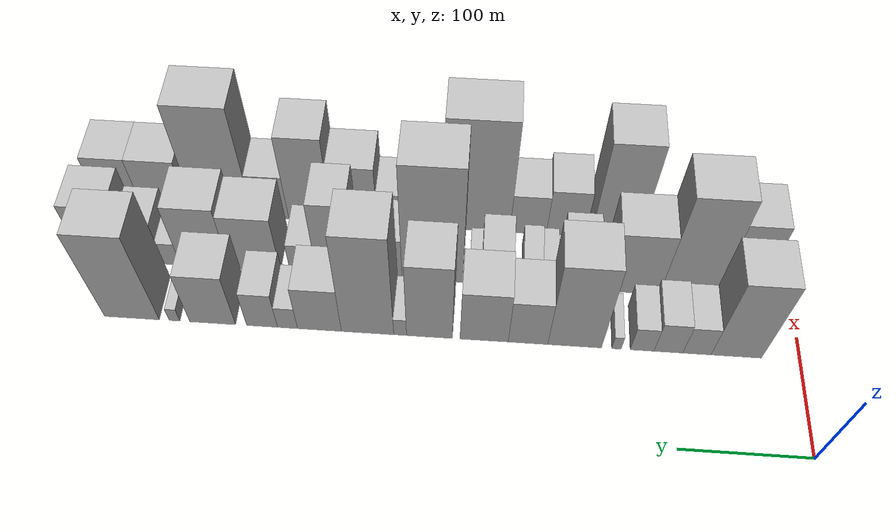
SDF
<sdf version="1.6">
 <world name="default">
  <model name="building_18">
   <static>1</static>
   <pose>100.0000 49.2545 0 0.000000 0.000000 0.000000</pose>
   <link name="link">
    <pose>0 0 52.50 0 0 0</pose>
    <collision name="collision"><geometry><box><size>40.0000 38.9705 105.0000</size></box></geometry></collision>
    <visual name="visual">
     <cast_shadows>0</cast_shadows>
     <geometry><box><size>40.0000 38.9705 105.0000</size></box></geometry>
     <material>
      <script>
       <uri>model://HANNAS_wall/materials/scripts</uri>
       <uri>model://HANNAS_wall/materials/textures</uri>
       <name>vrc/HANNAS_wall</name>
      </script>
     </material>
    </visual>
   </link>
  </model>
  <model name="building_19">
   <static>1</static>
   <pose>100.0000 79.6568 0 0.000000 0.000000 0.000000</pose>
   <link name="link">
    <pose>0 0 19.50 0 0 0</pose>
    <collision name="collision"><geometry><box><size>40.0000 21.8342 39.0000</size></box></geometry></collision>
    <visual name="visual">
     <cast_shadows>0</cast_shadows>
     <geometry><box><size>40.0000 21.8342 39.0000</size></box></geometry>
     <material>
      <script>
       <uri>model://HANNAS_wall/materials/scripts</uri>
       <uri>model://HANNAS_wall/materials/textures</uri>
       <name>vrc/HANNAS_wall</name>
      </script>
     </material>
    </visual>
   </link>
  </model>
  <model name="building_20">
   <static>1</static>
   <pose>100.0000 101.7693 0 0.000000 0.000000 0.000000</pose>
   <link name="link">
    <pose>0 0 21.00 0 0 0</pose>
    <collision name="collision"><geometry><box><size>40.0000 22.3909 42.0000</size></box></geometry></collision>
    <visual name="visual">
     <cast_shadows>0</cast_shadows>
     <geometry><box><size>40.0000 22.3909 42.0000</size></box></geometry>
     <material>
      <script>
       <uri>model://HANNAS_wall/materials/scripts</uri>
       <uri>model://HANNAS_wall/materials/textures</uri>
       <name>vrc/HANNAS_wall</name>
      </script>
     </material>
    </visual>
   </link>
  </model>
  <model name="building_21">
   <static>1</static>
   <pose>100.0000 122.1437 0 0.000000 0.000000 0.000000</pose>
   <link name="link">
    <pose>0 0 16.50 0 0 0</pose>
    <collision name="collision"><geometry><box><size>40.0000 18.3578 33.0000</size></box></geometry></collision>
    <visual name="visual">
     <cast_shadows>0</cast_shadows>
     <geometry><box><size>40.0000 18.3578 33.0000</size></box></geometry>
     <material>
      <script>
       <uri>model://HANNAS_wall/materials/scripts</uri>
       <uri>model://HANNAS_wall/materials/textures</uri>
       <name>vrc/HANNAS_wall</name>
      </script>
     </material>
    </visual>
   </link>
  </model>
  <model name="building_22">
   <static>1</static>
   <pose>100.0000 142.0112 0 0.000000 0.000000 0.000000</pose>
   <link name="link">
    <pose>0 0 9.00 0 0 0</pose>
    <collision name="collision"><geometry><box><size>40.0000 7.3772 18.0000</size></box></geometry></collision>
    <visual name="visual">
     <cast_shadows>0</cast_shadows>
     <geometry><box><size>40.0000 7.3772 18.0000</size></box></geometry>
     <material>
      <script>
       <uri>model://HANNAS_wall/materials/scripts</uri>
       <uri>model://HANNAS_wall/materials/textures</uri>
       <name>vrc/HANNAS_wall</name>
      </script>
     </material>
    </visual>
   </link>
  </model>
  <model name="building_23">
   <static>1</static>
   <pose>100.0000 174.6972 0 0.000000 0.000000 0.000000</pose>
   <link name="link">
    <pose>0 0 57.00 0 0 0</pose>
    <collision name="collision"><geometry><box><size>40.0000 41.9947 114.0000</size></box></geometry></collision>
    <visual name="visual">
     <cast_shadows>0</cast_shadows>
     <geometry><box><size>40.0000 41.9947 114.0000</size></box></geometry>
     <material>
      <script>
       <uri>model://HANNAS_wall/materials/scripts</uri>
       <uri>model://HANNAS_wall/materials/textures</uri>
       <name>vrc/HANNAS_wall</name>
      </script>
     </material>
    </visual>
   </link>
  </model>
  <model name="building_24">
   <static>1</static>
   <pose>100.0000 211.2063 0 0.000000 0.000000 0.000000</pose>
   <link name="link">
    <pose>0 0 30.00 0 0 0</pose>
    <collision name="collision"><geometry><box><size>40.0000 31.0236 60.0000</size></box></geometry></collision>
    <visual name="visual">
     <cast_shadows>0</cast_shadows>
     <geometry><box><size>40.0000 31.0236 60.0000</size></box></geometry>
     <material>
      <script>
       <uri>model://HANNAS_wall/materials/scripts</uri>
       <uri>model://HANNAS_wall/materials/textures</uri>
       <name>vrc/HANNAS_wall</name>
      </script>
     </material>
    </visual>
   </link>
  </model>
  <model name="building_25">
   <static>1</static>
   <pose>100.0000 245.6507 0 0.000000 0.000000 0.000000</pose>
   <link name="link">
    <pose>0 0 34.50 0 0 0</pose>
    <collision name="collision"><geometry><box><size>40.0000 37.8653 69.0000</size></box></geometry></collision>
    <visual name="visual">
     <cast_shadows>0</cast_shadows>
     <geometry><box><size>40.0000 37.8653 69.0000</size></box></geometry>
     <material>
      <script>
       <uri>model://HANNAS_wall/materials/scripts</uri>
       <uri>model://HANNAS_wall/materials/textures</uri>
       <name>vrc/HANNAS_wall</name>
      </script>
     </material>
    </visual>
   </link>
  </model>
  <model name="building_26">
   <static>1</static>
   <pose>100.0000 288.7055 0 0.000000 0.000000 0.000000</pose>
   <link name="link">
    <pose>0 0 51.00 0 0 0</pose>
    <collision name="collision"><geometry><box><size>40.0000 36.2443 102.0000</size></box></geometry></collision>
    <visual name="visual">
     <cast_shadows>0</cast_shadows>
     <geometry><box><size>40.0000 36.2443 102.0000</size></box></geometry>
     <material>
      <script>
       <uri>model://HANNAS_wall/materials/scripts</uri>
       <uri>model://HANNAS_wall/materials/textures</uri>
       <name>vrc/HANNAS_wall</name>
      </script>
     </material>
    </visual>
   </link>
  </model>
  <model name="building_27">
   <static>1</static>
   <pose>100.0000 311.8651 0 0.000000 0.000000 0.000000</pose>
   <link name="link">
    <pose>0 0 12.00 0 0 0</pose>
    <collision name="collision"><geometry><box><size>40.0000 10.0750 24.0000</size></box></geometry></collision>
    <visual name="visual">
     <cast_shadows>0</cast_shadows>
     <geometry><box><size>40.0000 10.0750 24.0000</size></box></geometry>
     <material>
      <script>
       <uri>model://HANNAS_wall/materials/scripts</uri>
       <uri>model://HANNAS_wall/materials/textures</uri>
       <name>vrc/HANNAS_wall</name>
      </script>
     </material>
    </visual>
   </link>
  </model>
  <model name="building_28">
   <static>1</static>
   <pose>100.0000 337.6767 0 0.000000 0.000000 0.000000</pose>
   <link name="link">
    <pose>0 0 67.50 0 0 0</pose>
    <collision name="collision"><geometry><box><size>40.0000 41.5482 135.0000</size></box></geometry></collision>
    <visual name="visual">
     <cast_shadows>0</cast_shadows>
     <geometry><box><size>40.0000 41.5482 135.0000</size></box></geometry>
     <material>
      <script>
       <uri>model://HANNAS_wall/materials/scripts</uri>
       <uri>model://HANNAS_wall/materials/textures</uri>
       <name>vrc/HANNAS_wall</name>
      </script>
     </material>
    </visual>
   </link>
  </model>
  <model name="building_29">
   <static>1</static>
   <pose>100.0000 375.9420 0 0.000000 0.000000 0.000000</pose>
   <link name="link">
    <pose>0 0 30.00 0 0 0</pose>
    <collision name="collision"><geometry><box><size>40.0000 34.9823 60.0000</size></box></geometry></collision>
    <visual name="visual">
     <cast_shadows>0</cast_shadows>
     <geometry><box><size>40.0000 34.9823 60.0000</size></box></geometry>
     <material>
      <script>
       <uri>model://HANNAS_wall/materials/scripts</uri>
       <uri>model://HANNAS_wall/materials/textures</uri>
       <name>vrc/HANNAS_wall</name>
      </script>
     </material>
    </visual>
   </link>
  </model>
  <model name="building_30">
   <static>1</static>
   <pose>100.0000 401.3811 0 0.000000 0.000000 0.000000</pose>
   <link name="link">
    <pose>0 0 15.00 0 0 0</pose>
    <collision name="collision"><geometry><box><size>40.0000 15.8960 30.0000</size></box></geometry></collision>
    <visual name="visual">
     <cast_shadows>0</cast_shadows>
     <geometry><box><size>40.0000 15.8960 30.0000</size></box></geometry>
     <material>
      <script>
       <uri>model://HANNAS_wall/materials/scripts</uri>
       <uri>model://HANNAS_wall/materials/textures</uri>
       <name>vrc/HANNAS_wall</name>
      </script>
     </material>
    </visual>
   </link>
  </model>
  <model name="building_31">
   <static>1</static>
   <pose>100.0000 421.6672 0 0.000000 0.000000 0.000000</pose>
   <link name="link">
    <pose>0 0 24.00 0 0 0</pose>
    <collision name="collision"><geometry><box><size>40.0000 24.6762 48.0000</size></box></geometry></collision>
    <visual name="visual">
     <cast_shadows>0</cast_shadows>
     <geometry><box><size>40.0000 24.6762 48.0000</size></box></geometry>
     <material>
      <script>
       <uri>model://HANNAS_wall/materials/scripts</uri>
       <uri>model://HANNAS_wall/materials/textures</uri>
       <name>vrc/HANNAS_wall</name>
      </script>
     </material>
    </visual>
   </link>
  </model>
  <model name="building_32">
   <static>1</static>
   <pose>100.0000 461.3938 0 0.000000 0.000000 0.000000</pose>
   <link name="link">
    <pose>0 0 34.50 0 0 0</pose>
    <collision name="collision"><geometry><box><size>40.0000 36.7770 69.0000</size></box></geometry></collision>
    <visual name="visual">
     <cast_shadows>0</cast_shadows>
     <geometry><box><size>40.0000 36.7770 69.0000</size></box></geometry>
     <material>
      <script>
       <uri>model://HANNAS_wall/materials/scripts</uri>
       <uri>model://HANNAS_wall/materials/textures</uri>
       <name>vrc/HANNAS_wall</name>
      </script>
     </material>
    </visual>
   </link>
  </model>
  <model name="building_33">
   <static>1</static>
   <pose>100.0000 492.0627 0 0.000000 0.000000 0.000000</pose>
   <link name="link">
    <pose>0 0 9.00 0 0 0</pose>
    <collision name="collision"><geometry><box><size>40.0000 8.5607 18.0000</size></box></geometry></collision>
    <visual name="visual">
     <cast_shadows>0</cast_shadows>
     <geometry><box><size>40.0000 8.5607 18.0000</size></box></geometry>
     <material>
      <script>
       <uri>model://HANNAS_wall/materials/scripts</uri>
       <uri>model://HANNAS_wall/materials/textures</uri>
       <name>vrc/HANNAS_wall</name>
      </script>
     </material>
    </visual>
   </link>
  </model>
  <model name="building_34">
   <static>1</static>
   <pose>100.0000 526.4093 0 0.000000 0.000000 0.000000</pose>
   <link name="link">
    <pose>0 0 58.50 0 0 0</pose>
    <collision name="collision"><geometry><box><size>40.0000 44.1324 117.0000</size></box></geometry></collision>
    <visual name="visual">
     <cast_shadows>0</cast_shadows>
     <geometry><box><size>40.0000 44.1324 117.0000</size></box></geometry>
     <material>
      <script>
       <uri>model://HANNAS_wall/materials/scripts</uri>
       <uri>model://HANNAS_wall/materials/textures</uri>
       <name>vrc/HANNAS_wall</name>
      </script>
     </material>
    </visual>
   </link>
  </model>
  <model name="building_49">
   <static>1</static>
   <pose>152.0000 45.5225 0 0.000000 0.000000 0.000000</pose>
   <link name="link">
    <pose>0 0 51.00 0 0 0</pose>
    <collision name="collision"><geometry><box><size>40.0000 31.6661 102.0000</size></box></geometry></collision>
    <visual name="visual">
     <cast_shadows>0</cast_shadows>
     <geometry><box><size>40.0000 31.6661 102.0000</size></box></geometry>
     <material>
      <script>
       <uri>model://HANNAS_wall/materials/scripts</uri>
       <uri>model://HANNAS_wall/materials/textures</uri>
       <name>vrc/HANNAS_wall</name>
      </script>
     </material>
    </visual>
   </link>
  </model>
  <model name="building_50">
   <static>1</static>
   <pose>152.0000 83.6295 0 0.000000 0.000000 0.000000</pose>
   <link name="link">
    <pose>0 0 66.00 0 0 0</pose>
    <collision name="collision"><geometry><box><size>40.0000 44.5480 132.0000</size></box></geometry></collision>
    <visual name="visual">
     <cast_shadows>0</cast_shadows>
     <geometry><box><size>40.0000 44.5480 132.0000</size></box></geometry>
     <material>
      <script>
       <uri>model://HANNAS_wall/materials/scripts</uri>
       <uri>model://HANNAS_wall/materials/textures</uri>
       <name>vrc/HANNAS_wall</name>
      </script>
     </material>
    </visual>
   </link>
  </model>
  <model name="building_51">
   <static>1</static>
   <pose>152.0000 127.2248 0 0.000000 0.000000 0.000000</pose>
   <link name="link">
    <pose>0 0 40.50 0 0 0</pose>
    <collision name="collision"><geometry><box><size>40.0000 42.6425 81.0000</size></box></geometry></collision>
    <visual name="visual">
     <cast_shadows>0</cast_shadows>
     <geometry><box><size>40.0000 42.6425 81.0000</size></box></geometry>
     <material>
      <script>
       <uri>model://HANNAS_wall/materials/scripts</uri>
       <uri>model://HANNAS_wall/materials/textures</uri>
       <name>vrc/HANNAS_wall</name>
      </script>
     </material>
    </visual>
   </link>
  </model>
  <model name="building_52">
   <static>1</static>
   <pose>152.0000 171.4712 0 0.000000 0.000000 0.000000</pose>
   <link name="link">
    <pose>0 0 25.50 0 0 0</pose>
    <collision name="collision"><geometry><box><size>40.0000 27.8504 51.0000</size></box></geometry></collision>
    <visual name="visual">
     <cast_shadows>0</cast_shadows>
     <geometry><box><size>40.0000 27.8504 51.0000</size></box></geometry>
     <material>
      <script>
       <uri>model://HANNAS_wall/materials/scripts</uri>
       <uri>model://HANNAS_wall/materials/textures</uri>
       <name>vrc/HANNAS_wall</name>
      </script>
     </material>
    </visual>
   </link>
  </model>
  <model name="building_53">
   <static>1</static>
   <pose>152.0000 195.6565 0 0.000000 0.000000 0.000000</pose>
   <link name="link">
    <pose>0 0 13.50 0 0 0</pose>
    <collision name="collision"><geometry><box><size>40.0000 12.5201 27.0000</size></box></geometry></collision>
    <visual name="visual">
     <cast_shadows>0</cast_shadows>
     <geometry><box><size>40.0000 12.5201 27.0000</size></box></geometry>
     <material>
      <script>
       <uri>model://HANNAS_wall/materials/scripts</uri>
       <uri>model://HANNAS_wall/materials/textures</uri>
       <name>vrc/HANNAS_wall</name>
      </script>
     </material>
    </visual>
   </link>
  </model>
  <model name="building_54">
   <static>1</static>
   <pose>152.0000 209.7513 0 0.000000 0.000000 0.000000</pose>
   <link name="link">
    <pose>0 0 15.00 0 0 0</pose>
    <collision name="collision"><geometry><box><size>40.0000 15.6696 30.0000</size></box></geometry></collision>
    <visual name="visual">
     <cast_shadows>0</cast_shadows>
     <geometry><box><size>40.0000 15.6696 30.0000</size></box></geometry>
     <material>
      <script>
       <uri>model://HANNAS_wall/materials/scripts</uri>
       <uri>model://HANNAS_wall/materials/textures</uri>
       <name>vrc/HANNAS_wall</name>
      </script>
     </material>
    </visual>
   </link>
  </model>
  <model name="building_55">
   <static>1</static>
   <pose>152.0000 238.0543 0 0.000000 0.000000 0.000000</pose>
   <link name="link">
    <pose>0 0 21.00 0 0 0</pose>
    <collision name="collision"><geometry><box><size>40.0000 24.9364 42.0000</size></box></geometry></collision>
    <visual name="visual">
     <cast_shadows>0</cast_shadows>
     <geometry><box><size>40.0000 24.9364 42.0000</size></box></geometry>
     <material>
      <script>
       <uri>model://HANNAS_wall/materials/scripts</uri>
       <uri>model://HANNAS_wall/materials/textures</uri>
       <name>vrc/HANNAS_wall</name>
      </script>
     </material>
    </visual>
   </link>
  </model>
  <model name="building_56">
   <static>1</static>
   <pose>152.0000 255.4384 0 0.000000 0.000000 0.000000</pose>
   <link name="link">
    <pose>0 0 10.50 0 0 0</pose>
    <collision name="collision"><geometry><box><size>40.0000 9.8317 21.0000</size></box></geometry></collision>
    <visual name="visual">
     <cast_shadows>0</cast_shadows>
     <geometry><box><size>40.0000 9.8317 21.0000</size></box></geometry>
     <material>
      <script>
       <uri>model://HANNAS_wall/materials/scripts</uri>
       <uri>model://HANNAS_wall/materials/textures</uri>
       <name>vrc/HANNAS_wall</name>
      </script>
     </material>
    </visual>
   </link>
  </model>
  <model name="building_57">
   <static>1</static>
   <pose>152.0000 290.1492 0 0.000000 0.000000 0.000000</pose>
   <link name="link">
    <pose>0 0 75.00 0 0 0</pose>
    <collision name="collision"><geometry><box><size>40.0000 49.5898 150.0000</size></box></geometry></collision>
    <visual name="visual">
     <cast_shadows>0</cast_shadows>
     <geometry><box><size>40.0000 49.5898 150.0000</size></box></geometry>
     <material>
      <script>
       <uri>model://HANNAS_wall/materials/scripts</uri>
       <uri>model://HANNAS_wall/materials/textures</uri>
       <name>vrc/HANNAS_wall</name>
      </script>
     </material>
    </visual>
   </link>
  </model>
  <model name="building_58">
   <static>1</static>
   <pose>152.0000 330.6442 0 0.000000 0.000000 0.000000</pose>
   <link name="link">
    <pose>0 0 27.00 0 0 0</pose>
    <collision name="collision"><geometry><box><size>40.0000 31.4003 54.0000</size></box></geometry></collision>
    <visual name="visual">
     <cast_shadows>0</cast_shadows>
     <geometry><box><size>40.0000 31.4003 54.0000</size></box></geometry>
     <material>
      <script>
       <uri>model://HANNAS_wall/materials/scripts</uri>
       <uri>model://HANNAS_wall/materials/textures</uri>
       <name>vrc/HANNAS_wall</name>
      </script>
     </material>
    </visual>
   </link>
  </model>
  <model name="building_59">
   <static>1</static>
   <pose>152.0000 370.3391 0 0.000000 0.000000 0.000000</pose>
   <link name="link">
    <pose>0 0 48.00 0 0 0</pose>
    <collision name="collision"><geometry><box><size>40.0000 29.9894 96.0000</size></box></geometry></collision>
    <visual name="visual">
     <cast_shadows>0</cast_shadows>
     <geometry><box><size>40.0000 29.9894 96.0000</size></box></geometry>
     <material>
      <script>
       <uri>model://HANNAS_wall/materials/scripts</uri>
       <uri>model://HANNAS_wall/materials/textures</uri>
       <name>vrc/HANNAS_wall</name>
      </script>
     </material>
    </visual>
   </link>
  </model>
  <model name="building_60">
   <static>1</static>
   <pose>152.0000 396.1795 0 0.000000 0.000000 0.000000</pose>
   <link name="link">
    <pose>0 0 19.50 0 0 0</pose>
    <collision name="collision"><geometry><box><size>40.0000 21.6916 39.0000</size></box></geometry></collision>
    <visual name="visual">
     <cast_shadows>0</cast_shadows>
     <geometry><box><size>40.0000 21.6916 39.0000</size></box></geometry>
     <material>
      <script>
       <uri>model://HANNAS_wall/materials/scripts</uri>
       <uri>model://HANNAS_wall/materials/textures</uri>
       <name>vrc/HANNAS_wall</name>
      </script>
     </material>
    </visual>
   </link>
  </model>
  <model name="building_61">
   <static>1</static>
   <pose>152.0000 436.1327 0 0.000000 0.000000 0.000000</pose>
   <link name="link">
    <pose>0 0 36.00 0 0 0</pose>
    <collision name="collision"><geometry><box><size>40.0000 42.2148 72.0000</size></box></geometry></collision>
    <visual name="visual">
     <cast_shadows>0</cast_shadows>
     <geometry><box><size>40.0000 42.2148 72.0000</size></box></geometry>
     <material>
      <script>
       <uri>model://HANNAS_wall/materials/scripts</uri>
       <uri>model://HANNAS_wall/materials/textures</uri>
       <name>vrc/HANNAS_wall</name>
      </script>
     </material>
    </visual>
   </link>
  </model>
  <model name="building_62">
   <static>1</static>
   <pose>152.0000 477.6932 0 0.000000 0.000000 0.000000</pose>
   <link name="link">
    <pose>0 0 40.50 0 0 0</pose>
    <collision name="collision"><geometry><box><size>40.0000 40.9060 81.0000</size></box></geometry></collision>
    <visual name="visual">
     <cast_shadows>0</cast_shadows>
     <geometry><box><size>40.0000 40.9060 81.0000</size></box></geometry>
     <material>
      <script>
       <uri>model://HANNAS_wall/materials/scripts</uri>
       <uri>model://HANNAS_wall/materials/textures</uri>
       <name>vrc/HANNAS_wall</name>
      </script>
     </material>
    </visual>
   </link>
  </model>
  <model name="building_63">
   <static>1</static>
   <pose>152.0000 505.9911 0 0.000000 0.000000 0.000000</pose>
   <link name="link">
    <pose>0 0 15.00 0 0 0</pose>
    <collision name="collision"><geometry><box><size>40.0000 15.6899 30.0000</size></box></geometry></collision>
    <visual name="visual">
     <cast_shadows>0</cast_shadows>
     <geometry><box><size>40.0000 15.6899 30.0000</size></box></geometry>
     <material>
      <script>
       <uri>model://HANNAS_wall/materials/scripts</uri>
       <uri>model://HANNAS_wall/materials/textures</uri>
       <name>vrc/HANNAS_wall</name>
      </script>
     </material>
    </visual>
   </link>
  </model>
  <model name="building_64">
   <static>1</static>
   <pose>152.0000 527.8593 0 0.000000 0.000000 0.000000</pose>
   <link name="link">
    <pose>0 0 25.50 0 0 0</pose>
    <collision name="collision"><geometry><box><size>40.0000 28.0464 51.0000</size></box></geometry></collision>
    <visual name="visual">
     <cast_shadows>0</cast_shadows>
     <geometry><box><size>40.0000 28.0464 51.0000</size></box></geometry>
     <material>
      <script>
       <uri>model://HANNAS_wall/materials/scripts</uri>
       <uri>model://HANNAS_wall/materials/textures</uri>
       <name>vrc/HANNAS_wall</name>
      </script>
     </material>
    </visual>
   </link>
  </model>
  <model name="building_65">
   <static>1</static>
   <pose>152.0000 560.7917 0 0.000000 0.000000 0.000000</pose>
   <link name="link">
    <pose>0 0 37.50 0 0 0</pose>
    <collision name="collision"><geometry><box><size>40.0000 37.8184 75.0000</size></box></geometry></collision>
    <visual name="visual">
     <cast_shadows>0</cast_shadows>
     <geometry><box><size>40.0000 37.8184 75.0000</size></box></geometry>
     <material>
      <script>
       <uri>model://HANNAS_wall/materials/scripts</uri>
       <uri>model://HANNAS_wall/materials/textures</uri>
       <name>vrc/HANNAS_wall</name>
      </script>
     </material>
    </visual>
   </link>
  </model>
  <model name="building_81">
   <static>1</static>
   <pose>204.0000 39.2710 0 0.000000 0.000000 0.000000</pose>
   <link name="link">
    <pose>0 0 13.50 0 0 0</pose>
    <collision name="collision"><geometry><box><size>40.0000 10.8950 27.0000</size></box></geometry></collision>
    <visual name="visual">
     <cast_shadows>0</cast_shadows>
     <geometry><box><size>40.0000 10.8950 27.0000</size></box></geometry>
     <material>
      <script>
       <uri>model://HANNAS_wall/materials/scripts</uri>
       <uri>model://HANNAS_wall/materials/textures</uri>
       <name>vrc/HANNAS_wall</name>
      </script>
     </material>
    </visual>
   </link>
  </model>
  <model name="building_82">
   <static>1</static>
   <pose>204.0000 140.1570 0 0.000000 0.000000 0.000000</pose>
   <link name="link">
    <pose>0 0 61.50 0 0 0</pose>
    <collision name="collision"><geometry><box><size>40.0000 40.2923 123.0000</size></box></geometry></collision>
    <visual name="visual">
     <cast_shadows>0</cast_shadows>
     <geometry><box><size>40.0000 40.2923 123.0000</size></box></geometry>
     <material>
      <script>
       <uri>model://HANNAS_wall/materials/scripts</uri>
       <uri>model://HANNAS_wall/materials/textures</uri>
       <name>vrc/HANNAS_wall</name>
      </script>
     </material>
    </visual>
   </link>
  </model>
  <model name="building_83">
   <static>1</static>
   <pose>204.0000 181.5708 0 0.000000 0.000000 0.000000</pose>
   <link name="link">
    <pose>0 0 30.00 0 0 0</pose>
    <collision name="collision"><geometry><box><size>40.0000 32.5351 60.0000</size></box></geometry></collision>
    <visual name="visual">
     <cast_shadows>0</cast_shadows>
     <geometry><box><size>40.0000 32.5351 60.0000</size></box></geometry>
     <material>
      <script>
       <uri>model://HANNAS_wall/materials/scripts</uri>
       <uri>model://HANNAS_wall/materials/textures</uri>
       <name>vrc/HANNAS_wall</name>
      </script>
     </material>
    </visual>
   </link>
  </model>
  <model name="building_84">
   <static>1</static>
   <pose>204.0000 213.1103 0 0.000000 0.000000 0.000000</pose>
   <link name="link">
    <pose>0 0 25.50 0 0 0</pose>
    <collision name="collision"><geometry><box><size>40.0000 30.5439 51.0000</size></box></geometry></collision>
    <visual name="visual">
     <cast_shadows>0</cast_shadows>
     <geometry><box><size>40.0000 30.5439 51.0000</size></box></geometry>
     <material>
      <script>
       <uri>model://HANNAS_wall/materials/scripts</uri>
       <uri>model://HANNAS_wall/materials/textures</uri>
       <name>vrc/HANNAS_wall</name>
      </script>
     </material>
    </visual>
   </link>
  </model>
  <model name="building_85">
   <static>1</static>
   <pose>204.0000 256.3469 0 0.000000 0.000000 0.000000</pose>
   <link name="link">
    <pose>0 0 70.50 0 0 0</pose>
    <collision name="collision"><geometry><box><size>40.0000 55.9294 141.0000</size></box></geometry></collision>
    <visual name="visual">
     <cast_shadows>0</cast_shadows>
     <geometry><box><size>40.0000 55.9294 141.0000</size></box></geometry>
     <material>
      <script>
       <uri>model://HANNAS_wall/materials/scripts</uri>
       <uri>model://HANNAS_wall/materials/textures</uri>
       <name>vrc/HANNAS_wall</name>
      </script>
     </material>
    </visual>
   </link>
  </model>
  <model name="building_86">
   <static>1</static>
   <pose>204.0000 300.9799 0 0.000000 0.000000 0.000000</pose>
   <link name="link">
    <pose>0 0 24.00 0 0 0</pose>
    <collision name="collision"><geometry><box><size>40.0000 25.3366 48.0000</size></box></geometry></collision>
    <visual name="visual">
     <cast_shadows>0</cast_shadows>
     <geometry><box><size>40.0000 25.3366 48.0000</size></box></geometry>
     <material>
      <script>
       <uri>model://HANNAS_wall/materials/scripts</uri>
       <uri>model://HANNAS_wall/materials/textures</uri>
       <name>vrc/HANNAS_wall</name>
      </script>
     </material>
    </visual>
   </link>
  </model>
  <model name="building_87">
   <static>1</static>
   <pose>204.0000 329.5842 0 0.000000 0.000000 0.000000</pose>
   <link name="link">
    <pose>0 0 21.00 0 0 0</pose>
    <collision name="collision"><geometry><box><size>40.0000 21.8721 42.0000</size></box></geometry></collision>
    <visual name="visual">
     <cast_shadows>0</cast_shadows>
     <geometry><box><size>40.0000 21.8721 42.0000</size></box></geometry>
     <material>
      <script>
       <uri>model://HANNAS_wall/materials/scripts</uri>
       <uri>model://HANNAS_wall/materials/textures</uri>
       <name>vrc/HANNAS_wall</name>
      </script>
     </material>
    </visual>
   </link>
  </model>
  <model name="building_88">
   <static>1</static>
   <pose>204.0000 359.9612 0 0.000000 0.000000 0.000000</pose>
   <link name="link">
    <pose>0 0 37.50 0 0 0</pose>
    <collision name="collision"><geometry><box><size>40.0000 38.8818 75.0000</size></box></geometry></collision>
    <visual name="visual">
     <cast_shadows>0</cast_shadows>
     <geometry><box><size>40.0000 38.8818 75.0000</size></box></geometry>
     <material>
      <script>
       <uri>model://HANNAS_wall/materials/scripts</uri>
       <uri>model://HANNAS_wall/materials/textures</uri>
       <name>vrc/HANNAS_wall</name>
      </script>
     </material>
    </visual>
   </link>
  </model>
  <model name="building_89">
   <static>1</static>
   <pose>204.0000 397.7205 0 0.000000 0.000000 0.000000</pose>
   <link name="link">
    <pose>0 0 54.00 0 0 0</pose>
    <collision name="collision"><geometry><box><size>40.0000 36.6367 108.0000</size></box></geometry></collision>
    <visual name="visual">
     <cast_shadows>0</cast_shadows>
     <geometry><box><size>40.0000 36.6367 108.0000</size></box></geometry>
     <material>
      <script>
       <uri>model://HANNAS_wall/materials/scripts</uri>
       <uri>model://HANNAS_wall/materials/textures</uri>
       <name>vrc/HANNAS_wall</name>
      </script>
     </material>
    </visual>
   </link>
  </model>
  <model name="building_90">
   <static>1</static>
   <pose>204.0000 431.3664 0 0.000000 0.000000 0.000000</pose>
   <link name="link">
    <pose>0 0 28.50 0 0 0</pose>
    <collision name="collision"><geometry><box><size>40.0000 30.6550 57.0000</size></box></geometry></collision>
    <visual name="visual">
     <cast_shadows>0</cast_shadows>
     <geometry><box><size>40.0000 30.6550 57.0000</size></box></geometry>
     <material>
      <script>
       <uri>model://HANNAS_wall/materials/scripts</uri>
       <uri>model://HANNAS_wall/materials/textures</uri>
       <name>vrc/HANNAS_wall</name>
      </script>
     </material>
    </visual>
   </link>
  </model>
  <model name="building_91">
   <static>1</static>
   <pose>204.0000 471.4618 0 0.000000 0.000000 0.000000</pose>
   <link name="link">
    <pose>0 0 69.00 0 0 0</pose>
    <collision name="collision"><geometry><box><size>40.0000 49.5359 138.0000</size></box></geometry></collision>
    <visual name="visual">
     <cast_shadows>0</cast_shadows>
     <geometry><box><size>40.0000 49.5359 138.0000</size></box></geometry>
     <material>
      <script>
       <uri>model://HANNAS_wall/materials/scripts</uri>
       <uri>model://HANNAS_wall/materials/textures</uri>
       <name>vrc/HANNAS_wall</name>
      </script>
     </material>
    </visual>
   </link>
  </model>
  <model name="building_92">
   <static>1</static>
   <pose>204.0000 521.3378 0 0.000000 0.000000 0.000000</pose>
   <link name="link">
    <pose>0 0 34.50 0 0 0</pose>
    <collision name="collision"><geometry><box><size>40.0000 40.2161 69.0000</size></box></geometry></collision>
    <visual name="visual">
     <cast_shadows>0</cast_shadows>
     <geometry><box><size>40.0000 40.2161 69.0000</size></box></geometry>
     <material>
      <script>
       <uri>model://HANNAS_wall/materials/scripts</uri>
       <uri>model://HANNAS_wall/materials/textures</uri>
       <name>vrc/HANNAS_wall</name>
      </script>
     </material>
    </visual>
   </link>
  </model>
  <model name="building_93">
   <static>1</static>
   <pose>204.0000 559.5577 0 0.000000 0.000000 0.000000</pose>
   <link name="link">
    <pose>0 0 34.50 0 0 0</pose>
    <collision name="collision"><geometry><box><size>40.0000 36.2237 69.0000</size></box></geometry></collision>
    <visual name="visual">
     <cast_shadows>0</cast_shadows>
     <geometry><box><size>40.0000 36.2237 69.0000</size></box></geometry>
     <material>
      <script>
       <uri>model://HANNAS_wall/materials/scripts</uri>
       <uri>model://HANNAS_wall/materials/textures</uri>
       <name>vrc/HANNAS_wall</name>
      </script>
     </material>
    </visual>
   </link>
  </model>
 </world>
</sdf>
